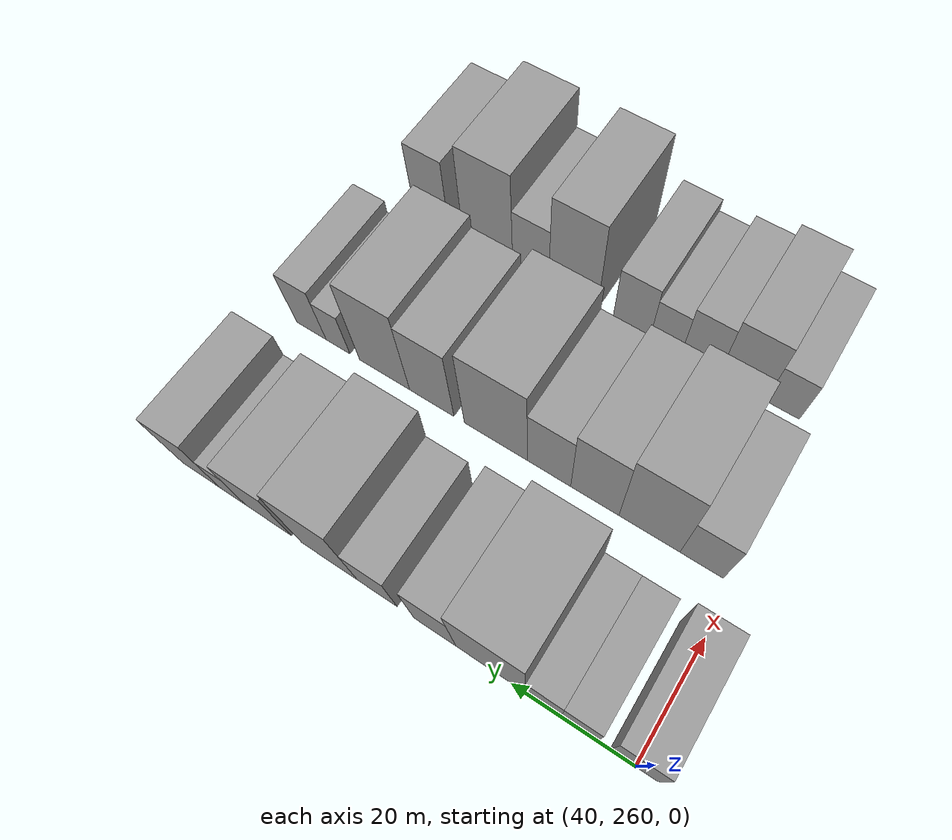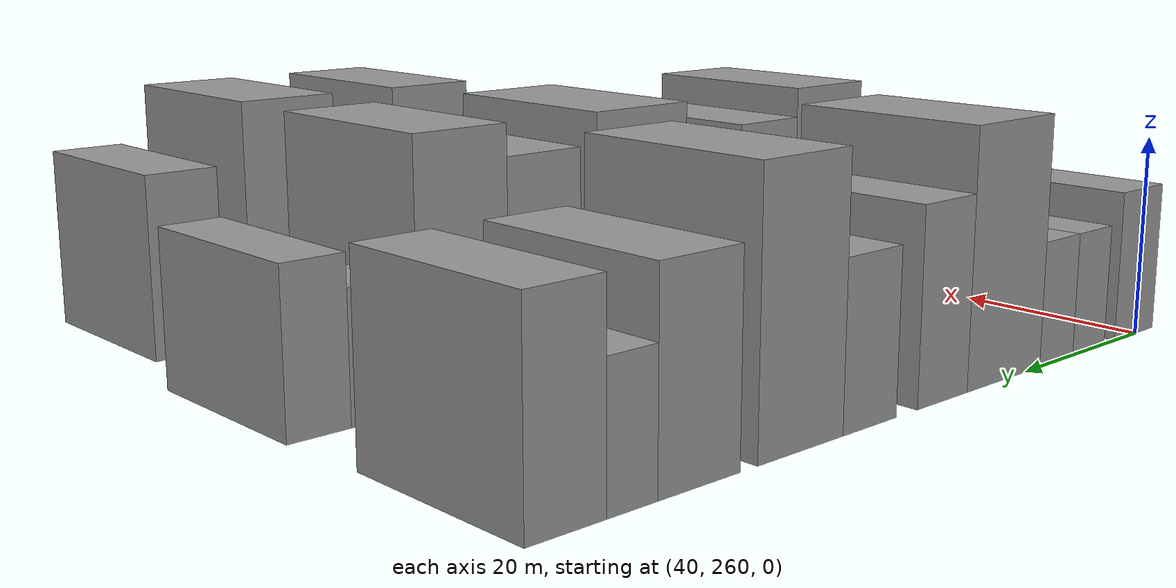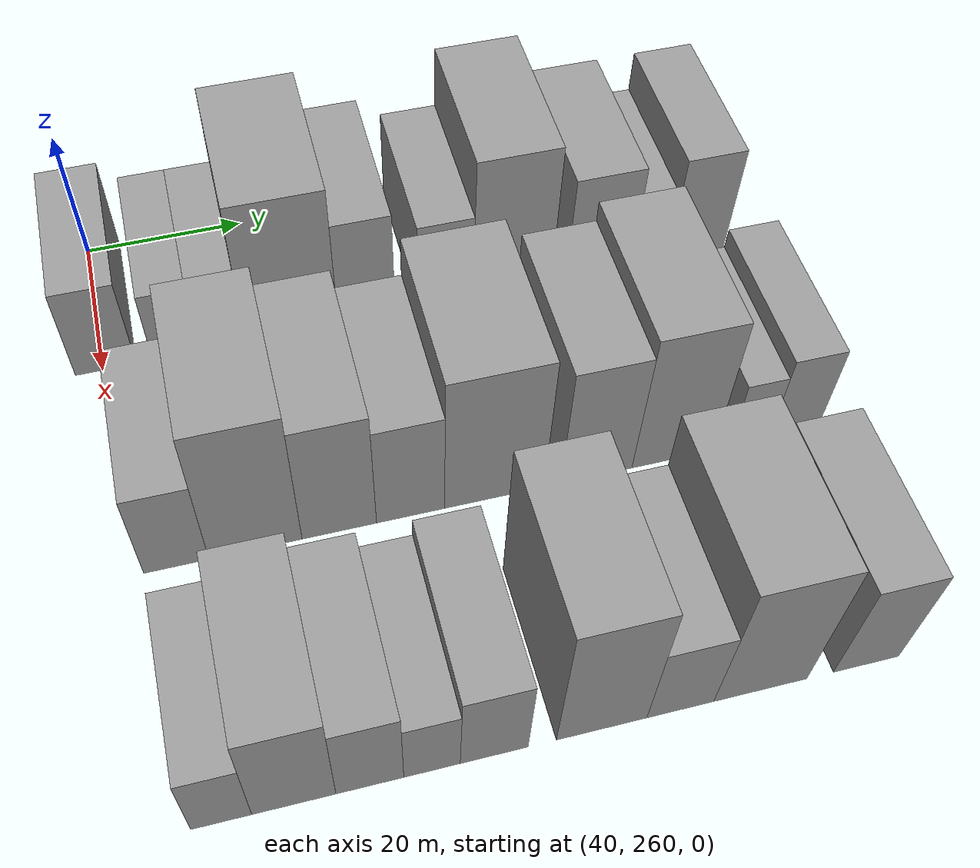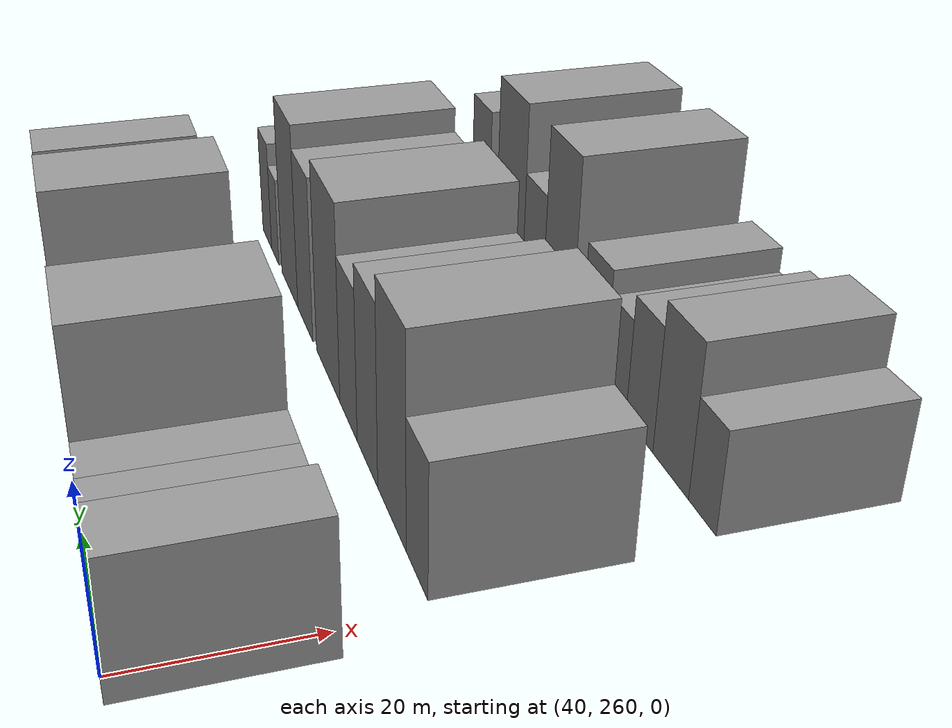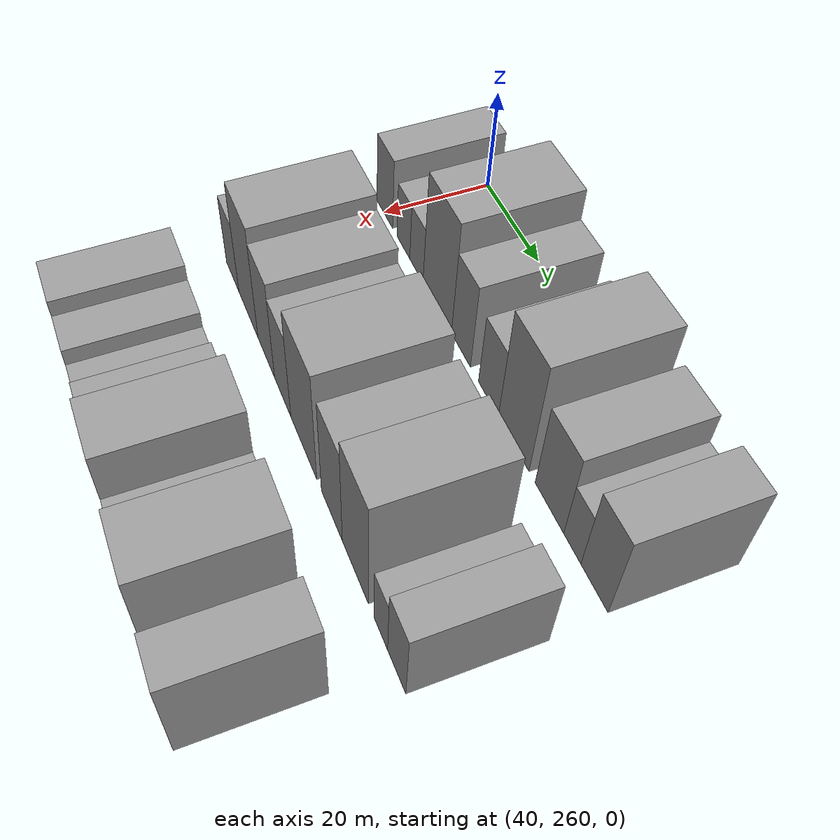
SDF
<sdf version="1.6">
 <world name="default">
  <model name="building_70">
   <static>1</static>
   <pose>50.0000 260.3813 0 0.000000 0.000000 0.000000</pose>
   <link name="link">
    <pose>0 0 7.50 0 0 0</pose>
    <collision name="collision"><geometry><box><size>20.0000 7.4426 15.0000</size></box></geometry></collision>
    <visual name="visual">
     <cast_shadows>0</cast_shadows>
     <geometry><box><size>20.0000 7.4426 15.0000</size></box></geometry>
     <material>
      <script>
       <uri>model://grey_wall/materials/scripts</uri>
       <uri>model://grey_wall/materials/textures</uri>
       <name>vrc/grey_wall</name>
      </script>
     </material>
    </visual>
   </link>
  </model>
  <model name="building_71">
   <static>1</static>
   <pose>50.0000 268.9897 0 0.000000 0.000000 0.000000</pose>
   <link name="link">
    <pose>0 0 6.00 0 0 0</pose>
    <collision name="collision"><geometry><box><size>20.0000 5.7741 12.0000</size></box></geometry></collision>
    <visual name="visual">
     <cast_shadows>0</cast_shadows>
     <geometry><box><size>20.0000 5.7741 12.0000</size></box></geometry>
     <material>
      <script>
       <uri>model://grey_wall/materials/scripts</uri>
       <uri>model://grey_wall/materials/textures</uri>
       <name>vrc/grey_wall</name>
      </script>
     </material>
    </visual>
   </link>
  </model>
  <model name="building_72">
   <static>1</static>
   <pose>50.0000 274.7653 0 0.000000 0.000000 0.000000</pose>
   <link name="link">
    <pose>0 0 6.00 0 0 0</pose>
    <collision name="collision"><geometry><box><size>20.0000 5.7773 12.0000</size></box></geometry></collision>
    <visual name="visual">
     <cast_shadows>0</cast_shadows>
     <geometry><box><size>20.0000 5.7773 12.0000</size></box></geometry>
     <material>
      <script>
       <uri>model://grey_wall/materials/scripts</uri>
       <uri>model://grey_wall/materials/textures</uri>
       <name>vrc/grey_wall</name>
      </script>
     </material>
    </visual>
   </link>
  </model>
  <model name="building_73">
   <static>1</static>
   <pose>50.0000 283.5271 0 0.000000 0.000000 0.000000</pose>
   <link name="link">
    <pose>0 0 12.00 0 0 0</pose>
    <collision name="collision"><geometry><box><size>20.0000 11.7462 24.0000</size></box></geometry></collision>
    <visual name="visual">
     <cast_shadows>0</cast_shadows>
     <geometry><box><size>20.0000 11.7462 24.0000</size></box></geometry>
     <material>
      <script>
       <uri>model://grey_wall/materials/scripts</uri>
       <uri>model://grey_wall/materials/textures</uri>
       <name>vrc/grey_wall</name>
      </script>
     </material>
    </visual>
   </link>
  </model>
  <model name="building_74">
   <static>1</static>
   <pose>50.0000 293.0660 0 0.000000 0.000000 0.000000</pose>
   <link name="link">
    <pose>0 0 9.00 0 0 0</pose>
    <collision name="collision"><geometry><box><size>20.0000 7.3316 18.0000</size></box></geometry></collision>
    <visual name="visual">
     <cast_shadows>0</cast_shadows>
     <geometry><box><size>20.0000 7.3316 18.0000</size></box></geometry>
     <material>
      <script>
       <uri>model://grey_wall/materials/scripts</uri>
       <uri>model://grey_wall/materials/textures</uri>
       <name>vrc/grey_wall</name>
      </script>
     </material>
    </visual>
   </link>
  </model>
  <model name="building_75">
   <static>1</static>
   <pose>50.0000 303.2862 0 0.000000 0.000000 0.000000</pose>
   <link name="link">
    <pose>0 0 7.50 0 0 0</pose>
    <collision name="collision"><geometry><box><size>20.0000 7.1087 15.0000</size></box></geometry></collision>
    <visual name="visual">
     <cast_shadows>0</cast_shadows>
     <geometry><box><size>20.0000 7.1087 15.0000</size></box></geometry>
     <material>
      <script>
       <uri>model://grey_wall/materials/scripts</uri>
       <uri>model://grey_wall/materials/textures</uri>
       <name>vrc/grey_wall</name>
      </script>
     </material>
    </visual>
   </link>
  </model>
  <model name="building_76">
   <static>1</static>
   <pose>50.0000 312.0511 0 0.000000 0.000000 0.000000</pose>
   <link name="link">
    <pose>0 0 12.00 0 0 0</pose>
    <collision name="collision"><geometry><box><size>20.0000 10.4210 24.0000</size></box></geometry></collision>
    <visual name="visual">
     <cast_shadows>0</cast_shadows>
     <geometry><box><size>20.0000 10.4210 24.0000</size></box></geometry>
     <material>
      <script>
       <uri>model://grey_wall/materials/scripts</uri>
       <uri>model://grey_wall/materials/textures</uri>
       <name>vrc/grey_wall</name>
      </script>
     </material>
    </visual>
   </link>
  </model>
  <model name="building_77">
   <static>1</static>
   <pose>50.0000 323.6863 0 0.000000 0.000000 0.000000</pose>
   <link name="link">
    <pose>0 0 9.00 0 0 0</pose>
    <collision name="collision"><geometry><box><size>20.0000 8.8494 18.0000</size></box></geometry></collision>
    <visual name="visual">
     <cast_shadows>0</cast_shadows>
     <geometry><box><size>20.0000 8.8494 18.0000</size></box></geometry>
     <material>
      <script>
       <uri>model://grey_wall/materials/scripts</uri>
       <uri>model://grey_wall/materials/textures</uri>
       <name>vrc/grey_wall</name>
      </script>
     </material>
    </visual>
   </link>
  </model>
  <model name="building_78">
   <static>1</static>
   <pose>50.0000 330.6366 0 0.000000 0.000000 0.000000</pose>
   <link name="link">
    <pose>0 0 6.00 0 0 0</pose>
    <collision name="collision"><geometry><box><size>20.0000 5.0514 12.0000</size></box></geometry></collision>
    <visual name="visual">
     <cast_shadows>0</cast_shadows>
     <geometry><box><size>20.0000 5.0514 12.0000</size></box></geometry>
     <material>
      <script>
       <uri>model://grey_wall/materials/scripts</uri>
       <uri>model://grey_wall/materials/textures</uri>
       <name>vrc/grey_wall</name>
      </script>
     </material>
    </visual>
   </link>
  </model>
  <model name="building_79">
   <static>1</static>
   <pose>50.0000 336.9710 0 0.000000 0.000000 0.000000</pose>
   <link name="link">
    <pose>0 0 9.00 0 0 0</pose>
    <collision name="collision"><geometry><box><size>20.0000 7.6172 18.0000</size></box></geometry></collision>
    <visual name="visual">
     <cast_shadows>0</cast_shadows>
     <geometry><box><size>20.0000 7.6172 18.0000</size></box></geometry>
     <material>
      <script>
       <uri>model://grey_wall/materials/scripts</uri>
       <uri>model://grey_wall/materials/textures</uri>
       <name>vrc/grey_wall</name>
      </script>
     </material>
    </visual>
   </link>
  </model>
  <model name="building_135">
   <static>1</static>
   <pose>79.0000 265.3143 0 0.000000 0.000000 0.000000</pose>
   <link name="link">
    <pose>0 0 7.50 0 0 0</pose>
    <collision name="collision"><geometry><box><size>20.0000 7.2147 15.0000</size></box></geometry></collision>
    <visual name="visual">
     <cast_shadows>0</cast_shadows>
     <geometry><box><size>20.0000 7.2147 15.0000</size></box></geometry>
     <material>
      <script>
       <uri>model://grey_wall/materials/scripts</uri>
       <uri>model://grey_wall/materials/textures</uri>
       <name>vrc/grey_wall</name>
      </script>
     </material>
    </visual>
   </link>
  </model>
  <model name="building_136">
   <static>1</static>
   <pose>79.0000 274.1628 0 0.000000 0.000000 0.000000</pose>
   <link name="link">
    <pose>0 0 12.00 0 0 0</pose>
    <collision name="collision"><geometry><box><size>20.0000 10.4823 24.0000</size></box></geometry></collision>
    <visual name="visual">
     <cast_shadows>0</cast_shadows>
     <geometry><box><size>20.0000 10.4823 24.0000</size></box></geometry>
     <material>
      <script>
       <uri>model://grey_wall/materials/scripts</uri>
       <uri>model://grey_wall/materials/textures</uri>
       <name>vrc/grey_wall</name>
      </script>
     </material>
    </visual>
   </link>
  </model>
  <model name="building_137">
   <static>1</static>
   <pose>79.0000 283.6721 0 0.000000 0.000000 0.000000</pose>
   <link name="link">
    <pose>0 0 10.50 0 0 0</pose>
    <collision name="collision"><geometry><box><size>20.0000 8.5364 21.0000</size></box></geometry></collision>
    <visual name="visual">
     <cast_shadows>0</cast_shadows>
     <geometry><box><size>20.0000 8.5364 21.0000</size></box></geometry>
     <material>
      <script>
       <uri>model://grey_wall/materials/scripts</uri>
       <uri>model://grey_wall/materials/textures</uri>
       <name>vrc/grey_wall</name>
      </script>
     </material>
    </visual>
   </link>
  </model>
  <model name="building_138">
   <static>1</static>
   <pose>79.0000 291.8912 0 0.000000 0.000000 0.000000</pose>
   <link name="link">
    <pose>0 0 9.00 0 0 0</pose>
    <collision name="collision"><geometry><box><size>20.0000 7.9017 18.0000</size></box></geometry></collision>
    <visual name="visual">
     <cast_shadows>0</cast_shadows>
     <geometry><box><size>20.0000 7.9017 18.0000</size></box></geometry>
     <material>
      <script>
       <uri>model://grey_wall/materials/scripts</uri>
       <uri>model://grey_wall/materials/textures</uri>
       <name>vrc/grey_wall</name>
      </script>
     </material>
    </visual>
   </link>
  </model>
  <model name="building_139">
   <static>1</static>
   <pose>79.0000 301.7388 0 0.000000 0.000000 0.000000</pose>
   <link name="link">
    <pose>0 0 12.00 0 0 0</pose>
    <collision name="collision"><geometry><box><size>20.0000 11.7935 24.0000</size></box></geometry></collision>
    <visual name="visual">
     <cast_shadows>0</cast_shadows>
     <geometry><box><size>20.0000 11.7935 24.0000</size></box></geometry>
     <material>
      <script>
       <uri>model://grey_wall/materials/scripts</uri>
       <uri>model://grey_wall/materials/textures</uri>
       <name>vrc/grey_wall</name>
      </script>
     </material>
    </visual>
   </link>
  </model>
  <model name="building_140">
   <static>1</static>
   <pose>79.0000 313.9639 0 0.000000 0.000000 0.000000</pose>
   <link name="link">
    <pose>0 0 10.50 0 0 0</pose>
    <collision name="collision"><geometry><box><size>20.0000 8.6566 21.0000</size></box></geometry></collision>
    <visual name="visual">
     <cast_shadows>0</cast_shadows>
     <geometry><box><size>20.0000 8.6566 21.0000</size></box></geometry>
     <material>
      <script>
       <uri>model://grey_wall/materials/scripts</uri>
       <uri>model://grey_wall/materials/textures</uri>
       <name>vrc/grey_wall</name>
      </script>
     </material>
    </visual>
   </link>
  </model>
  <model name="building_141">
   <static>1</static>
   <pose>79.0000 323.3206 0 0.000000 0.000000 0.000000</pose>
   <link name="link">
    <pose>0 0 12.00 0 0 0</pose>
    <collision name="collision"><geometry><box><size>20.0000 10.0569 24.0000</size></box></geometry></collision>
    <visual name="visual">
     <cast_shadows>0</cast_shadows>
     <geometry><box><size>20.0000 10.0569 24.0000</size></box></geometry>
     <material>
      <script>
       <uri>model://grey_wall/materials/scripts</uri>
       <uri>model://grey_wall/materials/textures</uri>
       <name>vrc/grey_wall</name>
      </script>
     </material>
    </visual>
   </link>
  </model>
  <model name="building_142">
   <static>1</static>
   <pose>79.0000 332.8075 0 0.000000 0.000000 0.000000</pose>
   <link name="link">
    <pose>0 0 6.00 0 0 0</pose>
    <collision name="collision"><geometry><box><size>20.0000 4.9169 12.0000</size></box></geometry></collision>
    <visual name="visual">
     <cast_shadows>0</cast_shadows>
     <geometry><box><size>20.0000 4.9169 12.0000</size></box></geometry>
     <material>
      <script>
       <uri>model://grey_wall/materials/scripts</uri>
       <uri>model://grey_wall/materials/textures</uri>
       <name>vrc/grey_wall</name>
      </script>
     </material>
    </visual>
   </link>
  </model>
  <model name="building_143">
   <static>1</static>
   <pose>79.0000 338.3802 0 0.000000 0.000000 0.000000</pose>
   <link name="link">
    <pose>0 0 7.50 0 0 0</pose>
    <collision name="collision"><geometry><box><size>20.0000 6.2285 15.0000</size></box></geometry></collision>
    <visual name="visual">
     <cast_shadows>0</cast_shadows>
     <geometry><box><size>20.0000 6.2285 15.0000</size></box></geometry>
     <material>
      <script>
       <uri>model://grey_wall/materials/scripts</uri>
       <uri>model://grey_wall/materials/textures</uri>
       <name>vrc/grey_wall</name>
      </script>
     </material>
    </visual>
   </link>
  </model>
  <model name="building_210">
   <static>1</static>
   <pose>108.0000 266.0166 0 0.000000 0.000000 0.000000</pose>
   <link name="link">
    <pose>0 0 6.00 0 0 0</pose>
    <collision name="collision"><geometry><box><size>20.0000 5.9915 12.0000</size></box></geometry></collision>
    <visual name="visual">
     <cast_shadows>0</cast_shadows>
     <geometry><box><size>20.0000 5.9915 12.0000</size></box></geometry>
     <material>
      <script>
       <uri>model://grey_wall/materials/scripts</uri>
       <uri>model://grey_wall/materials/textures</uri>
       <name>vrc/grey_wall</name>
      </script>
     </material>
    </visual>
   </link>
  </model>
  <model name="building_211">
   <static>1</static>
   <pose>108.0000 273.2228 0 0.000000 0.000000 0.000000</pose>
   <link name="link">
    <pose>0 0 9.00 0 0 0</pose>
    <collision name="collision"><geometry><box><size>20.0000 8.4210 18.0000</size></box></geometry></collision>
    <visual name="visual">
     <cast_shadows>0</cast_shadows>
     <geometry><box><size>20.0000 8.4210 18.0000</size></box></geometry>
     <material>
      <script>
       <uri>model://grey_wall/materials/scripts</uri>
       <uri>model://grey_wall/materials/textures</uri>
       <name>vrc/grey_wall</name>
      </script>
     </material>
    </visual>
   </link>
  </model>
  <model name="building_212">
   <static>1</static>
   <pose>108.0000 280.8879 0 0.000000 0.000000 0.000000</pose>
   <link name="link">
    <pose>0 0 7.50 0 0 0</pose>
    <collision name="collision"><geometry><box><size>20.0000 6.9091 15.0000</size></box></geometry></collision>
    <visual name="visual">
     <cast_shadows>0</cast_shadows>
     <geometry><box><size>20.0000 6.9091 15.0000</size></box></geometry>
     <material>
      <script>
       <uri>model://grey_wall/materials/scripts</uri>
       <uri>model://grey_wall/materials/textures</uri>
       <name>vrc/grey_wall</name>
      </script>
     </material>
    </visual>
   </link>
  </model>
  <model name="building_213">
   <static>1</static>
   <pose>108.0000 287.2489 0 0.000000 0.000000 0.000000</pose>
   <link name="link">
    <pose>0 0 6.00 0 0 0</pose>
    <collision name="collision"><geometry><box><size>20.0000 5.8130 12.0000</size></box></geometry></collision>
    <visual name="visual">
     <cast_shadows>0</cast_shadows>
     <geometry><box><size>20.0000 5.8130 12.0000</size></box></geometry>
     <material>
      <script>
       <uri>model://grey_wall/materials/scripts</uri>
       <uri>model://grey_wall/materials/textures</uri>
       <name>vrc/grey_wall</name>
      </script>
     </material>
    </visual>
   </link>
  </model>
  <model name="building_214">
   <static>1</static>
   <pose>108.0000 293.7023 0 0.000000 0.000000 0.000000</pose>
   <link name="link">
    <pose>0 0 7.50 0 0 0</pose>
    <collision name="collision"><geometry><box><size>20.0000 7.0936 15.0000</size></box></geometry></collision>
    <visual name="visual">
     <cast_shadows>0</cast_shadows>
     <geometry><box><size>20.0000 7.0936 15.0000</size></box></geometry>
     <material>
      <script>
       <uri>model://grey_wall/materials/scripts</uri>
       <uri>model://grey_wall/materials/textures</uri>
       <name>vrc/grey_wall</name>
      </script>
     </material>
    </visual>
   </link>
  </model>
  <model name="building_215">
   <static>1</static>
   <pose>108.0000 305.0982 0 0.000000 0.000000 0.000000</pose>
   <link name="link">
    <pose>0 0 12.00 0 0 0</pose>
    <collision name="collision"><geometry><box><size>20.0000 9.6983 24.0000</size></box></geometry></collision>
    <visual name="visual">
     <cast_shadows>0</cast_shadows>
     <geometry><box><size>20.0000 9.6983 24.0000</size></box></geometry>
     <material>
      <script>
       <uri>model://grey_wall/materials/scripts</uri>
       <uri>model://grey_wall/materials/textures</uri>
       <name>vrc/grey_wall</name>
      </script>
     </material>
    </visual>
   </link>
  </model>
  <model name="building_216">
   <static>1</static>
   <pose>108.0000 313.5902 0 0.000000 0.000000 0.000000</pose>
   <link name="link">
    <pose>0 0 7.50 0 0 0</pose>
    <collision name="collision"><geometry><box><size>20.0000 7.2857 15.0000</size></box></geometry></collision>
    <visual name="visual">
     <cast_shadows>0</cast_shadows>
     <geometry><box><size>20.0000 7.2857 15.0000</size></box></geometry>
     <material>
      <script>
       <uri>model://grey_wall/materials/scripts</uri>
       <uri>model://grey_wall/materials/textures</uri>
       <name>vrc/grey_wall</name>
      </script>
     </material>
    </visual>
   </link>
  </model>
  <model name="building_217">
   <static>1</static>
   <pose>108.0000 322.4111 0 0.000000 0.000000 0.000000</pose>
   <link name="link">
    <pose>0 0 12.00 0 0 0</pose>
    <collision name="collision"><geometry><box><size>20.0000 10.3562 24.0000</size></box></geometry></collision>
    <visual name="visual">
     <cast_shadows>0</cast_shadows>
     <geometry><box><size>20.0000 10.3562 24.0000</size></box></geometry>
     <material>
      <script>
       <uri>model://grey_wall/materials/scripts</uri>
       <uri>model://grey_wall/materials/textures</uri>
       <name>vrc/grey_wall</name>
      </script>
     </material>
    </visual>
   </link>
  </model>
  <model name="building_218">
   <static>1</static>
   <pose>108.0000 334.2983 0 0.000000 0.000000 0.000000</pose>
   <link name="link">
    <pose>0 0 9.00 0 0 0</pose>
    <collision name="collision"><geometry><box><size>20.0000 7.4182 18.0000</size></box></geometry></collision>
    <visual name="visual">
     <cast_shadows>0</cast_shadows>
     <geometry><box><size>20.0000 7.4182 18.0000</size></box></geometry>
     <material>
      <script>
       <uri>model://grey_wall/materials/scripts</uri>
       <uri>model://grey_wall/materials/textures</uri>
       <name>vrc/grey_wall</name>
      </script>
     </material>
    </visual>
   </link>
  </model>
 </world>
</sdf>
